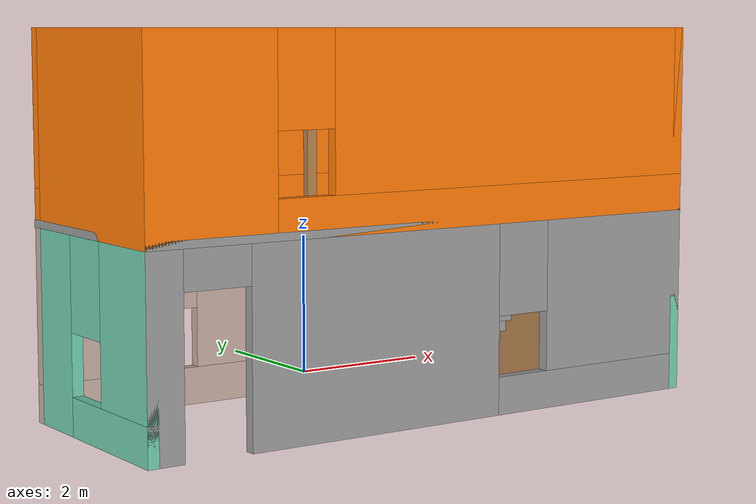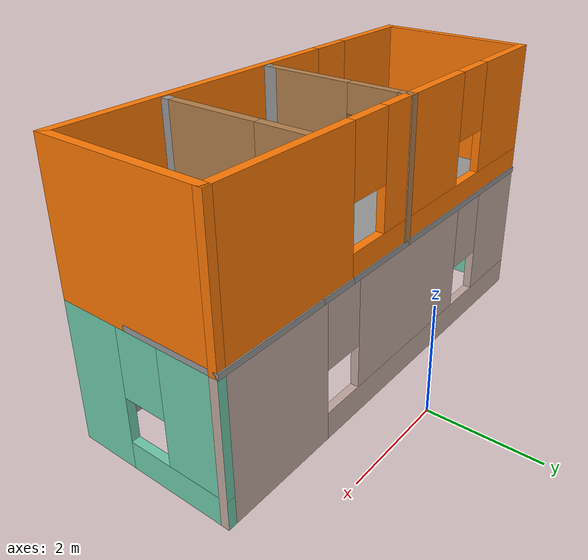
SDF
<?xml version='1.0'?>
<sdf version='1.6'>
  <model name='House'>
    <pose frame=''>-0.42 -2.375 0 0 -0 0</pose>
    <link name='Floor_0'>
      <pose frame=''>-0 0 2.5 0 -0 0</pose>
      <visual name='Floor_0_Visual_0'>
        <pose frame=''>-1.4075 0 0.05 0 -0 0</pose>
        <geometry>
          <box>
            <size>5.435 3.02 0.1</size>
          </box>
        </geometry>
        <material>
          <script>
            <uri>file://media/materials/scripts/gazebo.material</uri>
            <name>Gazebo/Grey</name>
          </script>
          <ambient>1 1 1 1</ambient>
        </material>
        <meta>
          <layer>1</layer>
        </meta>
      </visual>
      <collision name='Floor_0_Collision_0'>
        <geometry>
          <box>
            <size>5.435 3.02 0.1</size>
          </box>
        </geometry>
        <pose frame=''>-1.4075 0 0.05 0 -0 0</pose>
      </collision>
      <visual name='Floor_0_Visual_1'>
        <pose frame=''>2.7175 -1.4525 0.05 0 -0 0</pose>
        <geometry>
          <box>
            <size>2.815 0.115 0.1</size>
          </box>
        </geometry>
        <material>
          <script>
            <uri>file://media/materials/scripts/gazebo.material</uri>
            <name>Gazebo/Grey</name>
          </script>
          <ambient>1 1 1 1</ambient>
        </material>
        <meta>
          <layer>1</layer>
        </meta>
      </visual>
      <collision name='Floor_0_Collision_1'>
        <geometry>
          <box>
            <size>2.815 0.115 0.1</size>
          </box>
        </geometry>
        <pose frame=''>2.7175 -1.4525 0.05 0 -0 0</pose>
      </collision>
      <visual name='Floor_0_Visual_2'>
        <pose frame=''>3.0775 0.0575 0.05 0 -0 0</pose>
        <geometry>
          <box>
            <size>2.095 2.905 0.1</size>
          </box>
        </geometry>
        <material>
          <script>
            <uri>file://media/materials/scripts/gazebo.material</uri>
            <name>Gazebo/Grey</name>
          </script>
          <ambient>1 1 1 1</ambient>
        </material>
        <meta>
          <layer>1</layer>
        </meta>
      </visual>
      <collision name='Floor_0_Collision_2'>
        <geometry>
          <box>
            <size>2.095 2.905 0.1</size>
          </box>
        </geometry>
        <pose frame=''>3.0775 0.0575 0.05 0 -0 0</pose>
      </collision>
      <visual name='Floor_0_Visual_3'>
        <pose frame=''>1.67 0.9675 0.05 0 -0 0</pose>
        <geometry>
          <box>
            <size>0.72 1.085 0.1</size>
          </box>
        </geometry>
        <material>
          <script>
            <uri>file://media/materials/scripts/gazebo.material</uri>
            <name>Gazebo/Grey</name>
          </script>
          <ambient>1 1 1 1</ambient>
        </material>
        <meta>
          <layer>1</layer>
        </meta>
      </visual>
      <collision name='Floor_0_Collision_3'>
        <geometry>
          <box>
            <size>0.72 1.085 0.1</size>
          </box>
        </geometry>
        <pose frame=''>1.67 0.9675 0.05 0 -0 0</pose>
      </collision>
    </link>
    <link name='Stairs_0'>
      <visual name='Stairs_0_Visual_0'>
        <pose frame=''>1.67 0.364333 0.083333 0 -0 0</pose>
        <geometry>
          <box>
            <size>0.72 0.121333 0.166667</size>
          </box>
        </geometry>
        <material>
          <script>
            <uri>file://media/materials/scripts/gazebo.material</uri>
            <name>Gazebo/Grey</name>
          </script>
          <ambient>1 1 1 1</ambient>
        </material>
        <meta>
          <layer>0</layer>
        </meta>
      </visual>
      <collision name='Stairs_0_Collision_0'>
        <geometry>
          <box>
            <size>0.72 0.121333 0.166667</size>
          </box>
        </geometry>
        <pose frame=''>1.67 0.364333 0.083333 0 -0 0</pose>
      </collision>
      <visual name='Stairs_0_Visual_1'>
        <pose frame=''>1.67 0.243 0.25 0 -0 0</pose>
        <geometry>
          <box>
            <size>0.72 0.121333 0.166667</size>
          </box>
        </geometry>
        <material>
          <script>
            <uri>file://media/materials/scripts/gazebo.material</uri>
            <name>Gazebo/Grey</name>
          </script>
          <ambient>1 1 1 1</ambient>
        </material>
        <meta>
          <layer>0</layer>
        </meta>
      </visual>
      <collision name='Stairs_0_Collision_1'>
        <geometry>
          <box>
            <size>0.72 0.121333 0.166667</size>
          </box>
        </geometry>
        <pose frame=''>1.67 0.243 0.25 0 -0 0</pose>
      </collision>
      <visual name='Stairs_0_Visual_2'>
        <pose frame=''>1.67 0.121667 0.416667 0 -0 0</pose>
        <geometry>
          <box>
            <size>0.72 0.121333 0.166667</size>
          </box>
        </geometry>
        <material>
          <script>
            <uri>file://media/materials/scripts/gazebo.material</uri>
            <name>Gazebo/Grey</name>
          </script>
          <ambient>1 1 1 1</ambient>
        </material>
        <meta>
          <layer>0</layer>
        </meta>
      </visual>
      <collision name='Stairs_0_Collision_2'>
        <geometry>
          <box>
            <size>0.72 0.121333 0.166667</size>
          </box>
        </geometry>
        <pose frame=''>1.67 0.121667 0.416667 0 -0 0</pose>
      </collision>
      <visual name='Stairs_0_Visual_3'>
        <pose frame=''>1.67 0.000334 0.583333 0 -0 0</pose>
        <geometry>
          <box>
            <size>0.72 0.121333 0.166667</size>
          </box>
        </geometry>
        <material>
          <script>
            <uri>file://media/materials/scripts/gazebo.material</uri>
            <name>Gazebo/Grey</name>
          </script>
          <ambient>1 1 1 1</ambient>
        </material>
        <meta>
          <layer>0</layer>
        </meta>
      </visual>
      <collision name='Stairs_0_Collision_3'>
        <geometry>
          <box>
            <size>0.72 0.121333 0.166667</size>
          </box>
        </geometry>
        <pose frame=''>1.67 0.000334 0.583333 0 -0 0</pose>
      </collision>
      <visual name='Stairs_0_Visual_4'>
        <pose frame=''>1.67 -0.121 0.75 0 -0 0</pose>
        <geometry>
          <box>
            <size>0.72 0.121333 0.166667</size>
          </box>
        </geometry>
        <material>
          <script>
            <uri>file://media/materials/scripts/gazebo.material</uri>
            <name>Gazebo/Grey</name>
          </script>
          <ambient>1 1 1 1</ambient>
        </material>
        <meta>
          <layer>0</layer>
        </meta>
      </visual>
      <collision name='Stairs_0_Collision_4'>
        <geometry>
          <box>
            <size>0.72 0.121333 0.166667</size>
          </box>
        </geometry>
        <pose frame=''>1.67 -0.121 0.75 0 -0 0</pose>
      </collision>
      <visual name='Stairs_0_Visual_5'>
        <pose frame=''>1.67 -0.242333 0.916667 0 -0 0</pose>
        <geometry>
          <box>
            <size>0.72 0.121333 0.166667</size>
          </box>
        </geometry>
        <material>
          <script>
            <uri>file://media/materials/scripts/gazebo.material</uri>
            <name>Gazebo/Grey</name>
          </script>
          <ambient>1 1 1 1</ambient>
        </material>
        <meta>
          <layer>0</layer>
        </meta>
      </visual>
      <collision name='Stairs_0_Collision_5'>
        <geometry>
          <box>
            <size>0.72 0.121333 0.166667</size>
          </box>
        </geometry>
        <pose frame=''>1.67 -0.242333 0.916667 0 -0 0</pose>
      </collision>
      <visual name='Stairs_0_Visual_6'>
        <pose frame=''>1.67 -0.363666 1.08333 0 -0 0</pose>
        <geometry>
          <box>
            <size>0.72 0.121333 0.166667</size>
          </box>
        </geometry>
        <material>
          <script>
            <uri>file://media/materials/scripts/gazebo.material</uri>
            <name>Gazebo/Grey</name>
          </script>
          <ambient>1 1 1 1</ambient>
        </material>
        <meta>
          <layer>0</layer>
        </meta>
      </visual>
      <collision name='Stairs_0_Collision_6'>
        <geometry>
          <box>
            <size>0.72 0.121333 0.166667</size>
          </box>
        </geometry>
        <pose frame=''>1.67 -0.363666 1.08333 0 -0 0</pose>
      </collision>
      <visual name='Stairs_0_Visual_7'>
        <pose frame=''>1.67 -0.485 1.25 0 -0 0</pose>
        <geometry>
          <box>
            <size>0.72 0.121333 0.166667</size>
          </box>
        </geometry>
        <material>
          <script>
            <uri>file://media/materials/scripts/gazebo.material</uri>
            <name>Gazebo/Grey</name>
          </script>
          <ambient>1 1 1 1</ambient>
        </material>
        <meta>
          <layer>0</layer>
        </meta>
      </visual>
      <collision name='Stairs_0_Collision_7'>
        <geometry>
          <box>
            <size>0.72 0.121333 0.166667</size>
          </box>
        </geometry>
        <pose frame=''>1.67 -0.485 1.25 0 -0 0</pose>
      </collision>
      <visual name='Stairs_0_Visual_8'>
        <pose frame=''>1.67 -0.606333 1.41667 0 -0 0</pose>
        <geometry>
          <box>
            <size>0.72 0.121333 0.166667</size>
          </box>
        </geometry>
        <material>
          <script>
            <uri>file://media/materials/scripts/gazebo.material</uri>
            <name>Gazebo/Grey</name>
          </script>
          <ambient>1 1 1 1</ambient>
        </material>
        <meta>
          <layer>0</layer>
        </meta>
      </visual>
      <collision name='Stairs_0_Collision_8'>
        <geometry>
          <box>
            <size>0.72 0.121333 0.166667</size>
          </box>
        </geometry>
        <pose frame=''>1.67 -0.606333 1.41667 0 -0 0</pose>
      </collision>
      <visual name='Stairs_0_Visual_9'>
        <pose frame=''>1.67 -0.727667 1.58333 0 -0 0</pose>
        <geometry>
          <box>
            <size>0.72 0.121333 0.166667</size>
          </box>
        </geometry>
        <material>
          <script>
            <uri>file://media/materials/scripts/gazebo.material</uri>
            <name>Gazebo/Grey</name>
          </script>
          <ambient>1 1 1 1</ambient>
        </material>
        <meta>
          <layer>0</layer>
        </meta>
      </visual>
      <collision name='Stairs_0_Collision_9'>
        <geometry>
          <box>
            <size>0.72 0.121333 0.166667</size>
          </box>
        </geometry>
        <pose frame=''>1.67 -0.727667 1.58333 0 -0 0</pose>
      </collision>
      <visual name='Stairs_0_Visual_10'>
        <pose frame=''>1.67 -0.849 1.75 0 -0 0</pose>
        <geometry>
          <box>
            <size>0.72 0.121333 0.166667</size>
          </box>
        </geometry>
        <material>
          <script>
            <uri>file://media/materials/scripts/gazebo.material</uri>
            <name>Gazebo/Grey</name>
          </script>
          <ambient>1 1 1 1</ambient>
        </material>
        <meta>
          <layer>0</layer>
        </meta>
      </visual>
      <collision name='Stairs_0_Collision_10'>
        <geometry>
          <box>
            <size>0.72 0.121333 0.166667</size>
          </box>
        </geometry>
        <pose frame=''>1.67 -0.849 1.75 0 -0 0</pose>
      </collision>
      <visual name='Stairs_0_Visual_11'>
        <pose frame=''>1.67 -0.970333 1.91667 0 -0 0</pose>
        <geometry>
          <box>
            <size>0.72 0.121333 0.166667</size>
          </box>
        </geometry>
        <material>
          <script>
            <uri>file://media/materials/scripts/gazebo.material</uri>
            <name>Gazebo/Grey</name>
          </script>
          <ambient>1 1 1 1</ambient>
        </material>
        <meta>
          <layer>0</layer>
        </meta>
      </visual>
      <collision name='Stairs_0_Collision_11'>
        <geometry>
          <box>
            <size>0.72 0.121333 0.166667</size>
          </box>
        </geometry>
        <pose frame=''>1.67 -0.970333 1.91667 0 -0 0</pose>
      </collision>
      <visual name='Stairs_0_Visual_12'>
        <pose frame=''>1.67 -1.09167 2.08333 0 -0 0</pose>
        <geometry>
          <box>
            <size>0.72 0.121333 0.166667</size>
          </box>
        </geometry>
        <material>
          <script>
            <uri>file://media/materials/scripts/gazebo.material</uri>
            <name>Gazebo/Grey</name>
          </script>
          <ambient>1 1 1 1</ambient>
        </material>
        <meta>
          <layer>0</layer>
        </meta>
      </visual>
      <collision name='Stairs_0_Collision_12'>
        <geometry>
          <box>
            <size>0.72 0.121333 0.166667</size>
          </box>
        </geometry>
        <pose frame=''>1.67 -1.09167 2.08333 0 -0 0</pose>
      </collision>
      <visual name='Stairs_0_Visual_13'>
        <pose frame=''>1.67 -1.213 2.25 0 -0 0</pose>
        <geometry>
          <box>
            <size>0.72 0.121333 0.166667</size>
          </box>
        </geometry>
        <material>
          <script>
            <uri>file://media/materials/scripts/gazebo.material</uri>
            <name>Gazebo/Grey</name>
          </script>
          <ambient>1 1 1 1</ambient>
        </material>
        <meta>
          <layer>0</layer>
        </meta>
      </visual>
      <collision name='Stairs_0_Collision_13'>
        <geometry>
          <box>
            <size>0.72 0.121333 0.166667</size>
          </box>
        </geometry>
        <pose frame=''>1.67 -1.213 2.25 0 -0 0</pose>
      </collision>
      <visual name='Stairs_0_Visual_14'>
        <pose frame=''>1.67 -1.33433 2.41667 0 -0 0</pose>
        <geometry>
          <box>
            <size>0.72 0.121333 0.166667</size>
          </box>
        </geometry>
        <material>
          <script>
            <uri>file://media/materials/scripts/gazebo.material</uri>
            <name>Gazebo/Grey</name>
          </script>
          <ambient>1 1 1 1</ambient>
        </material>
        <meta>
          <layer>0</layer>
        </meta>
      </visual>
      <collision name='Stairs_0_Collision_14'>
        <geometry>
          <box>
            <size>0.72 0.121333 0.166667</size>
          </box>
        </geometry>
        <pose frame=''>1.67 -1.33433 2.41667 0 -0 0</pose>
      </collision>
    </link>
    <link name='Wall_0'>
      <pose frame=''>-4.05 -0.01 0 0 -0 -1.5708</pose>
      <visual name='Wall_0_Visual_0'>
        <pose frame=''>-0.9925 0 1.25 0 -0 0</pose>
        <geometry>
          <box>
            <size>1.015 0.15 2.5</size>
          </box>
        </geometry>
        <material>
          <script>
            <uri>file://media/materials/scripts/gazebo.material</uri>
            <name>Gazebo/Grey</name>
          </script>
          <ambient>0.435294 0.796078 0.67451 1</ambient>
        </material>
        <meta>
          <layer>0</layer>
        </meta>
      </visual>
      <collision name='Wall_0_Collision_0'>
        <geometry>
          <box>
            <size>1.015 0.15 2.5</size>
          </box>
        </geometry>
        <pose frame=''>-0.9925 0 1.25 0 -0 0</pose>
      </collision>
      <visual name='Wall_0_Visual_1'>
        <pose frame=''>0.5075 0 0.25 0 -0 0</pose>
        <geometry>
          <box>
            <size>1.985 0.15 0.5</size>
          </box>
        </geometry>
        <material>
          <script>
            <uri>file://media/materials/scripts/gazebo.material</uri>
            <name>Gazebo/Grey</name>
          </script>
          <ambient>0.435294 0.796078 0.67451 1</ambient>
        </material>
        <meta>
          <layer>0</layer>
        </meta>
      </visual>
      <collision name='Wall_0_Collision_1'>
        <geometry>
          <box>
            <size>1.985 0.15 0.5</size>
          </box>
        </geometry>
        <pose frame=''>0.5075 0 0.25 0 -0 0</pose>
      </collision>
      <visual name='Wall_0_Visual_2'>
        <pose frame=''>0.9075 0 1.5 0 -0 0</pose>
        <geometry>
          <box>
            <size>1.185 0.15 2</size>
          </box>
        </geometry>
        <material>
          <script>
            <uri>file://media/materials/scripts/gazebo.material</uri>
            <name>Gazebo/Grey</name>
          </script>
          <ambient>0.435294 0.796078 0.67451 1</ambient>
        </material>
        <meta>
          <layer>0</layer>
        </meta>
      </visual>
      <collision name='Wall_0_Collision_2'>
        <geometry>
          <box>
            <size>1.185 0.15 2</size>
          </box>
        </geometry>
        <pose frame=''>0.9075 0 1.5 0 -0 0</pose>
      </collision>
      <visual name='Wall_0_Visual_3'>
        <pose frame=''>-0.085 0 1.9 0 -0 0</pose>
        <geometry>
          <box>
            <size>0.8 0.15 1.2</size>
          </box>
        </geometry>
        <material>
          <script>
            <uri>file://media/materials/scripts/gazebo.material</uri>
            <name>Gazebo/Grey</name>
          </script>
          <ambient>0.435294 0.796078 0.67451 1</ambient>
        </material>
        <meta>
          <layer>0</layer>
        </meta>
      </visual>
      <collision name='Wall_0_Collision_3'>
        <geometry>
          <box>
            <size>0.8 0.15 1.2</size>
          </box>
        </geometry>
        <pose frame=''>-0.085 0 1.9 0 -0 0</pose>
      </collision>
    </link>
    <link name='Wall_1'>
      <pose frame=''>-0 -1.435 0 0 -0 0</pose>
      <visual name='Wall_1_Visual_0'>
        <pose frame=''>-3.8825 0 1.25 0 -0 0</pose>
        <geometry>
          <box>
            <size>0.485 0.15 2.5</size>
          </box>
        </geometry>
        <material>
          <script>
            <uri>file://media/materials/scripts/gazebo.material</uri>
            <name>Gazebo/Grey</name>
          </script>
          <ambient>1 1 1 1</ambient>
        </material>
        <meta>
          <layer>0</layer>
        </meta>
      </visual>
      <collision name='Wall_1_Collision_0'>
        <geometry>
          <box>
            <size>0.485 0.15 2.5</size>
          </box>
        </geometry>
        <pose frame=''>-3.8825 0 1.25 0 -0 0</pose>
      </collision>
      <visual name='Wall_1_Visual_1'>
        <pose frame=''>-0.895 0 1.25 0 -0 0</pose>
        <geometry>
          <box>
            <size>3.69 0.15 2.5</size>
          </box>
        </geometry>
        <material>
          <script>
            <uri>file://media/materials/scripts/gazebo.material</uri>
            <name>Gazebo/Grey</name>
          </script>
          <ambient>1 1 1 1</ambient>
        </material>
        <meta>
          <layer>0</layer>
        </meta>
      </visual>
      <collision name='Wall_1_Collision_1'>
        <geometry>
          <box>
            <size>3.69 0.15 2.5</size>
          </box>
        </geometry>
        <pose frame=''>-0.895 0 1.25 0 -0 0</pose>
      </collision>
      <visual name='Wall_1_Visual_2'>
        <pose frame=''>2.5375 0 0.25 0 -0 0</pose>
        <geometry>
          <box>
            <size>3.175 0.15 0.5</size>
          </box>
        </geometry>
        <material>
          <script>
            <uri>file://media/materials/scripts/gazebo.material</uri>
            <name>Gazebo/Grey</name>
          </script>
          <ambient>1 1 1 1</ambient>
        </material>
        <meta>
          <layer>0</layer>
        </meta>
      </visual>
      <collision name='Wall_1_Collision_2'>
        <geometry>
          <box>
            <size>3.175 0.15 0.5</size>
          </box>
        </geometry>
        <pose frame=''>2.5375 0 0.25 0 -0 0</pose>
      </collision>
      <visual name='Wall_1_Visual_3'>
        <pose frame=''>2.9375 0 1.5 0 -0 0</pose>
        <geometry>
          <box>
            <size>2.375 0.15 2</size>
          </box>
        </geometry>
        <material>
          <script>
            <uri>file://media/materials/scripts/gazebo.material</uri>
            <name>Gazebo/Grey</name>
          </script>
          <ambient>1 1 1 1</ambient>
        </material>
        <meta>
          <layer>0</layer>
        </meta>
      </visual>
      <collision name='Wall_1_Collision_3'>
        <geometry>
          <box>
            <size>2.375 0.15 2</size>
          </box>
        </geometry>
        <pose frame=''>2.9375 0 1.5 0 -0 0</pose>
      </collision>
      <visual name='Wall_1_Visual_4'>
        <pose frame=''>1.35 0 1.9 0 -0 0</pose>
        <geometry>
          <box>
            <size>0.8 0.15 1.2</size>
          </box>
        </geometry>
        <material>
          <script>
            <uri>file://media/materials/scripts/gazebo.material</uri>
            <name>Gazebo/Grey</name>
          </script>
          <ambient>1 1 1 1</ambient>
        </material>
        <meta>
          <layer>0</layer>
        </meta>
      </visual>
      <collision name='Wall_1_Collision_4'>
        <geometry>
          <box>
            <size>0.8 0.15 1.2</size>
          </box>
        </geometry>
        <pose frame=''>1.35 0 1.9 0 -0 0</pose>
      </collision>
      <visual name='Wall_1_Visual_5'>
        <pose frame=''>-3.19 0 2.25 0 -0 0</pose>
        <geometry>
          <box>
            <size>0.9 0.15 0.5</size>
          </box>
        </geometry>
        <material>
          <script>
            <uri>file://media/materials/scripts/gazebo.material</uri>
            <name>Gazebo/Grey</name>
          </script>
          <ambient>1 1 1 1</ambient>
        </material>
        <meta>
          <layer>0</layer>
        </meta>
      </visual>
      <collision name='Wall_1_Collision_5'>
        <geometry>
          <box>
            <size>0.9 0.15 0.5</size>
          </box>
        </geometry>
        <pose frame=''>-3.19 0 2.25 0 -0 0</pose>
      </collision>
    </link>
    <link name='Wall_10'>
      <collision name='Wall_10_Collision'>
        <geometry>
          <box>
            <size>3 0.15 2.5</size>
          </box>
        </geometry>
        <pose frame=''>0 0 1.25 0 -0 0</pose>
      </collision>
      <visual name='Wall_10_Visual'>
        <pose frame=''>0 0 1.25 0 -0 0</pose>
        <geometry>
          <box>
            <size>3 0.15 2.5</size>
          </box>
        </geometry>
        <material>
          <script>
            <uri>file://media/materials/scripts/gazebo.material</uri>
            <name>Gazebo/Grey</name>
          </script>
          <ambient>0.996078 0.47451 0.0196078 1</ambient>
        </material>
        <meta>
          <layer>1</layer>
        </meta>
      </visual>
      <pose frame=''>4.05 -0.01 2.5 0 -0 1.5708</pose>
    </link>
    <link name='Wall_11'>
      <pose frame=''>-0 1.415 2.5 0 -0 3.14159</pose>
      <visual name='Wall_11_Visual_0'>
        <pose frame=''>-2.7275 0 1.25 0 -0 0</pose>
        <geometry>
          <box>
            <size>2.795 0.15 2.5</size>
          </box>
        </geometry>
        <material>
          <script>
            <uri>file://media/materials/scripts/gazebo.material</uri>
            <name>Gazebo/Grey</name>
          </script>
          <ambient>0.996078 0.47451 0.0196078 1</ambient>
        </material>
        <meta>
          <layer>1</layer>
        </meta>
      </visual>
      <collision name='Wall_11_Collision_0'>
        <geometry>
          <box>
            <size>2.795 0.15 2.5</size>
          </box>
        </geometry>
        <pose frame=''>-2.7275 0 1.25 0 -0 0</pose>
      </collision>
      <visual name='Wall_11_Visual_1'>
        <pose frame=''>1.3975 0 0.25 0 -0 0</pose>
        <geometry>
          <box>
            <size>5.455 0.15 0.5</size>
          </box>
        </geometry>
        <material>
          <script>
            <uri>file://media/materials/scripts/gazebo.material</uri>
            <name>Gazebo/Grey</name>
          </script>
          <ambient>0.996078 0.47451 0.0196078 1</ambient>
        </material>
        <meta>
          <layer>1</layer>
        </meta>
      </visual>
      <collision name='Wall_11_Collision_1'>
        <geometry>
          <box>
            <size>5.455 0.15 0.5</size>
          </box>
        </geometry>
        <pose frame=''>1.3975 0 0.25 0 -0 0</pose>
      </collision>
      <visual name='Wall_11_Visual_2'>
        <pose frame=''>0.6 0 1.5 0 -0 0</pose>
        <geometry>
          <box>
            <size>2.26 0.15 2</size>
          </box>
        </geometry>
        <material>
          <script>
            <uri>file://media/materials/scripts/gazebo.material</uri>
            <name>Gazebo/Grey</name>
          </script>
          <ambient>0.996078 0.47451 0.0196078 1</ambient>
        </material>
        <meta>
          <layer>1</layer>
        </meta>
      </visual>
      <collision name='Wall_11_Collision_2'>
        <geometry>
          <box>
            <size>2.26 0.15 2</size>
          </box>
        </geometry>
        <pose frame=''>0.6 0 1.5 0 -0 0</pose>
      </collision>
      <visual name='Wall_11_Visual_3'>
        <pose frame=''>3.3275 0 1.5 0 -0 0</pose>
        <geometry>
          <box>
            <size>1.595 0.15 2</size>
          </box>
        </geometry>
        <material>
          <script>
            <uri>file://media/materials/scripts/gazebo.material</uri>
            <name>Gazebo/Grey</name>
          </script>
          <ambient>0.996078 0.47451 0.0196078 1</ambient>
        </material>
        <meta>
          <layer>1</layer>
        </meta>
      </visual>
      <collision name='Wall_11_Collision_3'>
        <geometry>
          <box>
            <size>1.595 0.15 2</size>
          </box>
        </geometry>
        <pose frame=''>3.3275 0 1.5 0 -0 0</pose>
      </collision>
      <visual name='Wall_11_Visual_4'>
        <pose frame=''>-0.93 0 1.9 0 -0 0</pose>
        <geometry>
          <box>
            <size>0.8 0.15 1.2</size>
          </box>
        </geometry>
        <material>
          <script>
            <uri>file://media/materials/scripts/gazebo.material</uri>
            <name>Gazebo/Grey</name>
          </script>
          <ambient>0.996078 0.47451 0.0196078 1</ambient>
        </material>
        <meta>
          <layer>1</layer>
        </meta>
      </visual>
      <collision name='Wall_11_Collision_4'>
        <geometry>
          <box>
            <size>0.8 0.15 1.2</size>
          </box>
        </geometry>
        <pose frame=''>-0.93 0 1.9 0 -0 0</pose>
      </collision>
      <visual name='Wall_11_Visual_5'>
        <pose frame=''>2.13 0 1.9 0 -0 0</pose>
        <geometry>
          <box>
            <size>0.8 0.15 1.2</size>
          </box>
        </geometry>
        <material>
          <script>
            <uri>file://media/materials/scripts/gazebo.material</uri>
            <name>Gazebo/Grey</name>
          </script>
          <ambient>0.996078 0.47451 0.0196078 1</ambient>
        </material>
        <meta>
          <layer>1</layer>
        </meta>
      </visual>
      <collision name='Wall_11_Collision_5'>
        <geometry>
          <box>
            <size>0.8 0.15 1.2</size>
          </box>
        </geometry>
        <pose frame=''>2.13 0 1.9 0 -0 0</pose>
      </collision>
    </link>
    <link name='Wall_12'>
      <pose frame=''>2.11 0.055 2.5 0 -0 -1.5708</pose>
      <visual name='Wall_12_Visual_0'>
        <pose frame=''>-1.3425 0 1.25 0 -0 0</pose>
        <geometry>
          <box>
            <size>0.065 0.15 2.5</size>
          </box>
        </geometry>
        <material>
          <script>
            <uri>file://media/materials/scripts/gazebo.material</uri>
            <name>Gazebo/Wood</name>
          </script>
          <ambient>1 1 1 1</ambient>
        </material>
        <meta>
          <layer>1</layer>
        </meta>
      </visual>
      <collision name='Wall_12_Collision_0'>
        <geometry>
          <box>
            <size>0.065 0.15 2.5</size>
          </box>
        </geometry>
        <pose frame=''>-1.3425 0 1.25 0 -0 0</pose>
      </collision>
      <visual name='Wall_12_Visual_1'>
        <pose frame=''>0.4825 0 1.25 0 -0 0</pose>
        <geometry>
          <box>
            <size>1.785 0.15 2.5</size>
          </box>
        </geometry>
        <material>
          <script>
            <uri>file://media/materials/scripts/gazebo.material</uri>
            <name>Gazebo/Wood</name>
          </script>
          <ambient>1 1 1 1</ambient>
        </material>
        <meta>
          <layer>1</layer>
        </meta>
      </visual>
      <collision name='Wall_12_Collision_1'>
        <geometry>
          <box>
            <size>1.785 0.15 2.5</size>
          </box>
        </geometry>
        <pose frame=''>0.4825 0 1.25 0 -0 0</pose>
      </collision>
      <visual name='Wall_12_Visual_2'>
        <pose frame=''>-0.86 0 2.25 0 -0 0</pose>
        <geometry>
          <box>
            <size>0.9 0.15 0.5</size>
          </box>
        </geometry>
        <material>
          <script>
            <uri>file://media/materials/scripts/gazebo.material</uri>
            <name>Gazebo/Wood</name>
          </script>
          <ambient>1 1 1 1</ambient>
        </material>
        <meta>
          <layer>1</layer>
        </meta>
      </visual>
      <collision name='Wall_12_Collision_2'>
        <geometry>
          <box>
            <size>0.9 0.15 0.5</size>
          </box>
        </geometry>
        <pose frame=''>-0.86 0 2.25 0 -0 0</pose>
      </collision>
    </link>
    <link name='Wall_13'>
      <collision name='Wall_13_Collision'>
        <geometry>
          <box>
            <size>0.15 0.15 2.5</size>
          </box>
        </geometry>
        <pose frame=''>0 0 1.25 0 -0 0</pose>
      </collision>
      <visual name='Wall_13_Visual'>
        <pose frame=''>0 0 1.25 0 -0 0</pose>
        <geometry>
          <box>
            <size>0.15 0.15 2.5</size>
          </box>
        </geometry>
        <material>
          <script>
            <uri>file://media/materials/scripts/gazebo.material</uri>
            <name>Gazebo/Grey</name>
          </script>
          <ambient>1 1 1 1</ambient>
        </material>
        <meta>
          <layer>1</layer>
        </meta>
      </visual>
      <pose frame=''>2.11 -1.245 2.5 0 -0 0</pose>
    </link>
    <link name='Wall_14'>
      <pose frame=''>-0.15 0.135 2.5 0 -0 -1.5708</pose>
      <visual name='Wall_14_Visual_0'>
        <pose frame=''>-1.2425 0 1.25 0 -0 0</pose>
        <geometry>
          <box>
            <size>0.265 0.15 2.5</size>
          </box>
        </geometry>
        <material>
          <script>
            <uri>file://media/materials/scripts/gazebo.material</uri>
            <name>Gazebo/Wood</name>
          </script>
          <ambient>1 1 1 1</ambient>
        </material>
        <meta>
          <layer>1</layer>
        </meta>
      </visual>
      <collision name='Wall_14_Collision_0'>
        <geometry>
          <box>
            <size>0.265 0.15 2.5</size>
          </box>
        </geometry>
        <pose frame=''>-1.2425 0 1.25 0 -0 0</pose>
      </collision>
      <visual name='Wall_14_Visual_1'>
        <pose frame=''>0.5825 0 1.25 0 -0 0</pose>
        <geometry>
          <box>
            <size>1.585 0.15 2.5</size>
          </box>
        </geometry>
        <material>
          <script>
            <uri>file://media/materials/scripts/gazebo.material</uri>
            <name>Gazebo/Wood</name>
          </script>
          <ambient>1 1 1 1</ambient>
        </material>
        <meta>
          <layer>1</layer>
        </meta>
      </visual>
      <collision name='Wall_14_Collision_1'>
        <geometry>
          <box>
            <size>1.585 0.15 2.5</size>
          </box>
        </geometry>
        <pose frame=''>0.5825 0 1.25 0 -0 0</pose>
      </collision>
      <visual name='Wall_14_Visual_2'>
        <pose frame=''>-0.66 0 2.25 0 -0 0</pose>
        <geometry>
          <box>
            <size>0.9 0.15 0.5</size>
          </box>
        </geometry>
        <material>
          <script>
            <uri>file://media/materials/scripts/gazebo.material</uri>
            <name>Gazebo/Wood</name>
          </script>
          <ambient>1 1 1 1</ambient>
        </material>
        <meta>
          <layer>1</layer>
        </meta>
      </visual>
      <collision name='Wall_14_Collision_2'>
        <geometry>
          <box>
            <size>0.9 0.15 0.5</size>
          </box>
        </geometry>
        <pose frame=''>-0.66 0 2.25 0 -0 0</pose>
      </collision>
    </link>
    <link name='Wall_15'>
      <collision name='Wall_15_Collision'>
        <geometry>
          <box>
            <size>0.25 0.15 2.5</size>
          </box>
        </geometry>
        <pose frame=''>0 0 1.25 0 -0 0</pose>
      </collision>
      <visual name='Wall_15_Visual'>
        <pose frame=''>0 0 1.25 0 -0 0</pose>
        <geometry>
          <box>
            <size>0.25 0.15 2.5</size>
          </box>
        </geometry>
        <material>
          <script>
            <uri>file://media/materials/scripts/gazebo.material</uri>
            <name>Gazebo/Grey</name>
          </script>
          <ambient>1 1 1 1</ambient>
        </material>
        <meta>
          <layer>1</layer>
        </meta>
      </visual>
      <pose frame=''>-0.15 -1.215 2.5 0 -0 -1.5708</pose>
    </link>
    <link name='Wall_2'>
      <pose frame=''>4.05 -0.01 0 0 -0 1.5708</pose>
      <visual name='Wall_2_Visual_0'>
        <pose frame=''>-0.9475 0 1.25 0 -0 0</pose>
        <geometry>
          <box>
            <size>1.105 0.15 2.5</size>
          </box>
        </geometry>
        <material>
          <script>
            <uri>file://media/materials/scripts/gazebo.material</uri>
            <name>Gazebo/Grey</name>
          </script>
          <ambient>0.435294 0.796078 0.67451 1</ambient>
        </material>
        <meta>
          <layer>0</layer>
        </meta>
      </visual>
      <collision name='Wall_2_Collision_0'>
        <geometry>
          <box>
            <size>1.105 0.15 2.5</size>
          </box>
        </geometry>
        <pose frame=''>-0.9475 0 1.25 0 -0 0</pose>
      </collision>
      <visual name='Wall_2_Visual_1'>
        <pose frame=''>0.5525 0 0.25 0 -0 0</pose>
        <geometry>
          <box>
            <size>1.895 0.15 0.5</size>
          </box>
        </geometry>
        <material>
          <script>
            <uri>file://media/materials/scripts/gazebo.material</uri>
            <name>Gazebo/Grey</name>
          </script>
          <ambient>0.435294 0.796078 0.67451 1</ambient>
        </material>
        <meta>
          <layer>0</layer>
        </meta>
      </visual>
      <collision name='Wall_2_Collision_1'>
        <geometry>
          <box>
            <size>1.895 0.15 0.5</size>
          </box>
        </geometry>
        <pose frame=''>0.5525 0 0.25 0 -0 0</pose>
      </collision>
      <visual name='Wall_2_Visual_2'>
        <pose frame=''>0.9525 0 1.5 0 -0 0</pose>
        <geometry>
          <box>
            <size>1.095 0.15 2</size>
          </box>
        </geometry>
        <material>
          <script>
            <uri>file://media/materials/scripts/gazebo.material</uri>
            <name>Gazebo/Grey</name>
          </script>
          <ambient>0.435294 0.796078 0.67451 1</ambient>
        </material>
        <meta>
          <layer>0</layer>
        </meta>
      </visual>
      <collision name='Wall_2_Collision_2'>
        <geometry>
          <box>
            <size>1.095 0.15 2</size>
          </box>
        </geometry>
        <pose frame=''>0.9525 0 1.5 0 -0 0</pose>
      </collision>
      <visual name='Wall_2_Visual_3'>
        <pose frame=''>0.005 0 1.9 0 -0 0</pose>
        <geometry>
          <box>
            <size>0.8 0.15 1.2</size>
          </box>
        </geometry>
        <material>
          <script>
            <uri>file://media/materials/scripts/gazebo.material</uri>
            <name>Gazebo/Grey</name>
          </script>
          <ambient>0.435294 0.796078 0.67451 1</ambient>
        </material>
        <meta>
          <layer>0</layer>
        </meta>
      </visual>
      <collision name='Wall_2_Collision_3'>
        <geometry>
          <box>
            <size>0.8 0.15 1.2</size>
          </box>
        </geometry>
        <pose frame=''>0.005 0 1.9 0 -0 0</pose>
      </collision>
    </link>
    <link name='Wall_3'>
      <pose frame=''>-0 1.415 0 0 -0 3.14159</pose>
      <visual name='Wall_3_Visual_0'>
        <pose frame=''>-3.0275 0 1.25 0 -0 0</pose>
        <geometry>
          <box>
            <size>2.195 0.15 2.5</size>
          </box>
        </geometry>
        <material>
          <script>
            <uri>file://media/materials/scripts/gazebo.material</uri>
            <name>Gazebo/Grey</name>
          </script>
          <ambient>0.760784 0.662745 0.627451 1</ambient>
        </material>
        <meta>
          <layer>0</layer>
        </meta>
      </visual>
      <collision name='Wall_3_Collision_0'>
        <geometry>
          <box>
            <size>2.195 0.15 2.5</size>
          </box>
        </geometry>
        <pose frame=''>-3.0275 0 1.25 0 -0 0</pose>
      </collision>
      <visual name='Wall_3_Visual_1'>
        <pose frame=''>1.0975 0 0.25 0 -0 0</pose>
        <geometry>
          <box>
            <size>6.055 0.15 0.5</size>
          </box>
        </geometry>
        <material>
          <script>
            <uri>file://media/materials/scripts/gazebo.material</uri>
            <name>Gazebo/Grey</name>
          </script>
          <ambient>0.760784 0.662745 0.627451 1</ambient>
        </material>
        <meta>
          <layer>0</layer>
        </meta>
      </visual>
      <collision name='Wall_3_Collision_1'>
        <geometry>
          <box>
            <size>6.055 0.15 0.5</size>
          </box>
        </geometry>
        <pose frame=''>1.0975 0 0.25 0 -0 0</pose>
      </collision>
      <visual name='Wall_3_Visual_2'>
        <pose frame=''>0.39 0 1.5 0 -0 0</pose>
        <geometry>
          <box>
            <size>3.04 0.15 2</size>
          </box>
        </geometry>
        <material>
          <script>
            <uri>file://media/materials/scripts/gazebo.material</uri>
            <name>Gazebo/Grey</name>
          </script>
          <ambient>0.760784 0.662745 0.627451 1</ambient>
        </material>
        <meta>
          <layer>0</layer>
        </meta>
      </visual>
      <collision name='Wall_3_Collision_2'>
        <geometry>
          <box>
            <size>3.04 0.15 2</size>
          </box>
        </geometry>
        <pose frame=''>0.39 0 1.5 0 -0 0</pose>
      </collision>
      <visual name='Wall_3_Visual_3'>
        <pose frame=''>3.4175 0 1.5 0 -0 0</pose>
        <geometry>
          <box>
            <size>1.415 0.15 2</size>
          </box>
        </geometry>
        <material>
          <script>
            <uri>file://media/materials/scripts/gazebo.material</uri>
            <name>Gazebo/Grey</name>
          </script>
          <ambient>0.760784 0.662745 0.627451 1</ambient>
        </material>
        <meta>
          <layer>0</layer>
        </meta>
      </visual>
      <collision name='Wall_3_Collision_3'>
        <geometry>
          <box>
            <size>1.415 0.15 2</size>
          </box>
        </geometry>
        <pose frame=''>3.4175 0 1.5 0 -0 0</pose>
      </collision>
      <visual name='Wall_3_Visual_4'>
        <pose frame=''>-1.53 0 1.9 0 -0 0</pose>
        <geometry>
          <box>
            <size>0.8 0.15 1.2</size>
          </box>
        </geometry>
        <material>
          <script>
            <uri>file://media/materials/scripts/gazebo.material</uri>
            <name>Gazebo/Grey</name>
          </script>
          <ambient>0.760784 0.662745 0.627451 1</ambient>
        </material>
        <meta>
          <layer>0</layer>
        </meta>
      </visual>
      <collision name='Wall_3_Collision_4'>
        <geometry>
          <box>
            <size>0.8 0.15 1.2</size>
          </box>
        </geometry>
        <pose frame=''>-1.53 0 1.9 0 -0 0</pose>
      </collision>
      <visual name='Wall_3_Visual_5'>
        <pose frame=''>2.31 0 1.9 0 -0 0</pose>
        <geometry>
          <box>
            <size>0.8 0.15 1.2</size>
          </box>
        </geometry>
        <material>
          <script>
            <uri>file://media/materials/scripts/gazebo.material</uri>
            <name>Gazebo/Grey</name>
          </script>
          <ambient>0.760784 0.662745 0.627451 1</ambient>
        </material>
        <meta>
          <layer>0</layer>
        </meta>
      </visual>
      <collision name='Wall_3_Collision_5'>
        <geometry>
          <box>
            <size>0.8 0.15 1.2</size>
          </box>
        </geometry>
        <pose frame=''>2.31 0 1.9 0 -0 0</pose>
      </collision>
    </link>
    <link name='Wall_5'>
      <pose frame=''>2.11 0.055 0 0 -0 -1.5708</pose>
      <visual name='Wall_5_Visual_0'>
        <pose frame=''>-1.3225 0 1.25 0 -0 0</pose>
        <geometry>
          <box>
            <size>0.105 0.15 2.5</size>
          </box>
        </geometry>
        <material>
          <script>
            <uri>file://media/materials/scripts/gazebo.material</uri>
            <name>Gazebo/Wood</name>
          </script>
          <ambient>1 1 1 1</ambient>
        </material>
        <meta>
          <layer>0</layer>
        </meta>
      </visual>
      <collision name='Wall_5_Collision_0'>
        <geometry>
          <box>
            <size>0.105 0.15 2.5</size>
          </box>
        </geometry>
        <pose frame=''>-1.3225 0 1.25 0 -0 0</pose>
      </collision>
      <visual name='Wall_5_Visual_1'>
        <pose frame=''>0.5025 0 1.25 0 -0 0</pose>
        <geometry>
          <box>
            <size>1.745 0.15 2.5</size>
          </box>
        </geometry>
        <material>
          <script>
            <uri>file://media/materials/scripts/gazebo.material</uri>
            <name>Gazebo/Wood</name>
          </script>
          <ambient>1 1 1 1</ambient>
        </material>
        <meta>
          <layer>0</layer>
        </meta>
      </visual>
      <collision name='Wall_5_Collision_1'>
        <geometry>
          <box>
            <size>1.745 0.15 2.5</size>
          </box>
        </geometry>
        <pose frame=''>0.5025 0 1.25 0 -0 0</pose>
      </collision>
      <visual name='Wall_5_Visual_2'>
        <pose frame=''>-0.82 0 2.25 0 -0 0</pose>
        <geometry>
          <box>
            <size>0.9 0.15 0.5</size>
          </box>
        </geometry>
        <material>
          <script>
            <uri>file://media/materials/scripts/gazebo.material</uri>
            <name>Gazebo/Wood</name>
          </script>
          <ambient>1 1 1 1</ambient>
        </material>
        <meta>
          <layer>0</layer>
        </meta>
      </visual>
      <collision name='Wall_5_Collision_2'>
        <geometry>
          <box>
            <size>0.9 0.15 0.5</size>
          </box>
        </geometry>
        <pose frame=''>-0.82 0 2.25 0 -0 0</pose>
      </collision>
    </link>
    <link name='Wall_6'>
      <collision name='Wall_6_Collision'>
        <geometry>
          <box>
            <size>0.15 0.15 2.5</size>
          </box>
        </geometry>
        <pose frame=''>0 0 1.25 0 -0 0</pose>
      </collision>
      <visual name='Wall_6_Visual'>
        <pose frame=''>0 0 1.25 0 -0 0</pose>
        <geometry>
          <box>
            <size>0.15 0.15 2.5</size>
          </box>
        </geometry>
        <material>
          <script>
            <uri>file://media/materials/scripts/gazebo.material</uri>
            <name>Gazebo/Grey</name>
          </script>
          <ambient>1 1 1 1</ambient>
        </material>
        <meta>
          <layer>0</layer>
        </meta>
      </visual>
      <pose frame=''>2.11 -1.245 0 0 -0 0</pose>
    </link>
    <link name='Wall_8'>
      <collision name='Wall_8_Collision'>
        <geometry>
          <box>
            <size>3 0.15 2.5</size>
          </box>
        </geometry>
        <pose frame=''>0 0 1.25 0 -0 0</pose>
      </collision>
      <visual name='Wall_8_Visual'>
        <pose frame=''>0 0 1.25 0 -0 0</pose>
        <geometry>
          <box>
            <size>3 0.15 2.5</size>
          </box>
        </geometry>
        <material>
          <script>
            <uri>file://media/materials/scripts/gazebo.material</uri>
            <name>Gazebo/Grey</name>
          </script>
          <ambient>0.996078 0.47451 0.0196078 1</ambient>
        </material>
        <meta>
          <layer>1</layer>
        </meta>
      </visual>
      <pose frame=''>-4.05 -0.01 2.5 0 -0 -1.5708</pose>
    </link>
    <link name='Wall_9'>
      <pose frame=''>-0 -1.435 2.5 0 -0 0</pose>
      <visual name='Wall_9_Visual_0'>
        <pose frame=''>-3.2475 0 1.25 0 -0 0</pose>
        <geometry>
          <box>
            <size>1.755 0.15 2.5</size>
          </box>
        </geometry>
        <material>
          <script>
            <uri>file://media/materials/scripts/gazebo.material</uri>
            <name>Gazebo/Grey</name>
          </script>
          <ambient>0.996078 0.47451 0.0196078 1</ambient>
        </material>
        <meta>
          <layer>1</layer>
        </meta>
      </visual>
      <collision name='Wall_9_Collision_0'>
        <geometry>
          <box>
            <size>1.755 0.15 2.5</size>
          </box>
        </geometry>
        <pose frame=''>-3.2475 0 1.25 0 -0 0</pose>
      </collision>
      <visual name='Wall_9_Visual_1'>
        <pose frame=''>0.8775 0 0.25 0 -0 0</pose>
        <geometry>
          <box>
            <size>6.495 0.15 0.5</size>
          </box>
        </geometry>
        <material>
          <script>
            <uri>file://media/materials/scripts/gazebo.material</uri>
            <name>Gazebo/Grey</name>
          </script>
          <ambient>0.996078 0.47451 0.0196078 1</ambient>
        </material>
        <meta>
          <layer>1</layer>
        </meta>
      </visual>
      <collision name='Wall_9_Collision_1'>
        <geometry>
          <box>
            <size>6.495 0.15 0.5</size>
          </box>
        </geometry>
        <pose frame=''>0.8775 0 0.25 0 -0 0</pose>
      </collision>
      <visual name='Wall_9_Visual_2'>
        <pose frame=''>1.2775 0 1.5 0 -0 0</pose>
        <geometry>
          <box>
            <size>5.695 0.15 2</size>
          </box>
        </geometry>
        <material>
          <script>
            <uri>file://media/materials/scripts/gazebo.material</uri>
            <name>Gazebo/Grey</name>
          </script>
          <ambient>0.996078 0.47451 0.0196078 1</ambient>
        </material>
        <meta>
          <layer>1</layer>
        </meta>
      </visual>
      <collision name='Wall_9_Collision_2'>
        <geometry>
          <box>
            <size>5.695 0.15 2</size>
          </box>
        </geometry>
        <pose frame=''>1.2775 0 1.5 0 -0 0</pose>
      </collision>
      <visual name='Wall_9_Visual_3'>
        <pose frame=''>-1.97 0 1.9 0 -0 0</pose>
        <geometry>
          <box>
            <size>0.8 0.15 1.2</size>
          </box>
        </geometry>
        <material>
          <script>
            <uri>file://media/materials/scripts/gazebo.material</uri>
            <name>Gazebo/Grey</name>
          </script>
          <ambient>0.996078 0.47451 0.0196078 1</ambient>
        </material>
        <meta>
          <layer>1</layer>
        </meta>
      </visual>
      <collision name='Wall_9_Collision_3'>
        <geometry>
          <box>
            <size>0.8 0.15 1.2</size>
          </box>
        </geometry>
        <pose frame=''>-1.97 0 1.9 0 -0 0</pose>
      </collision>
    </link>
    <static>1</static>
  </model>
</sdf>
